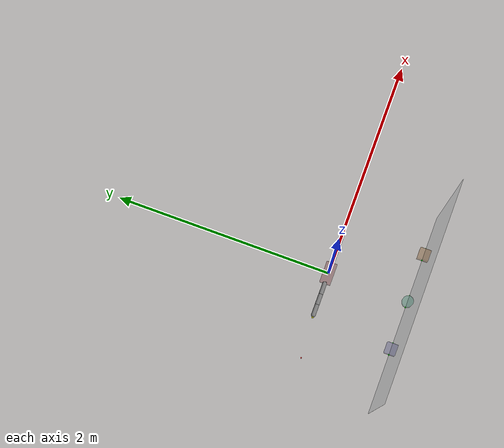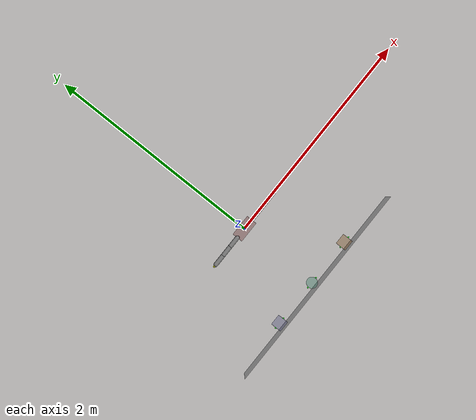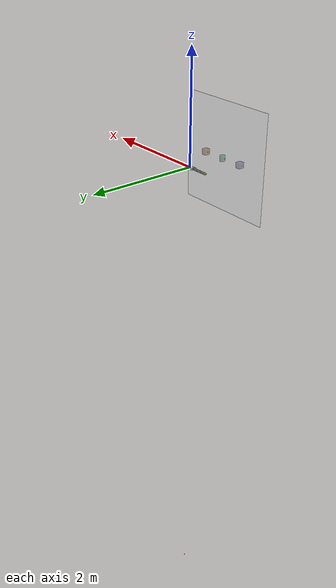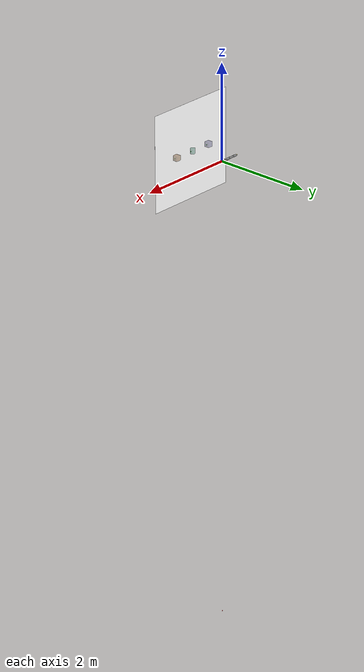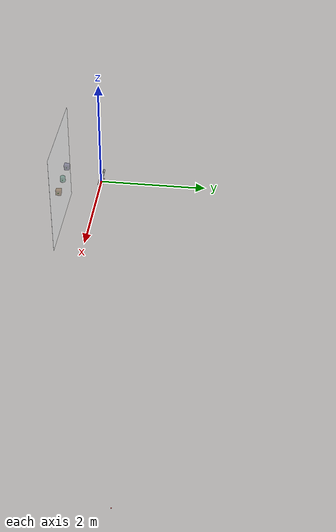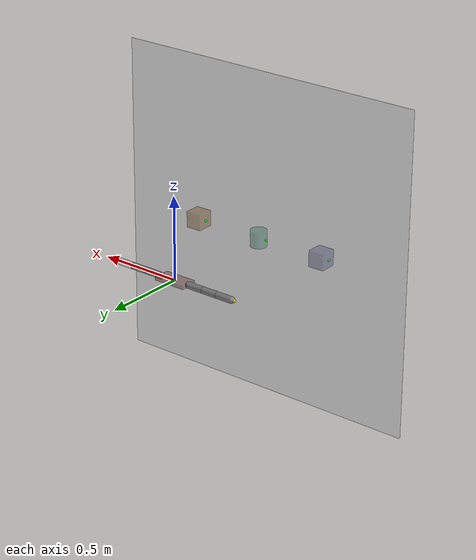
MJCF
<mujoco model="planar_two_finger_manipulator">
    <compiler angle="radian"/>
    <option timestep="0.001" gravity="0.0 -9.81 0.0"/>

    <visual>
        <rgba haze="0.15 0.25 0.35 1"/>
        <quality shadowsize="8192"/>
    </visual>

    <asset>
        <texture type="skybox" builtin="gradient" rgb1="0.3 0.5 0.7" rgb2="0.1 0.1 0.2" width="512" height="3072"/>
        <texture type="2d" name="groundplane" builtin="checker" mark="edge" rgb1="0.2 0.3 0.4" rgb2="0.1 0.2 0.3"
            markrgb="0.8 0.8 0.8" width="1000" height="1000"/>
        <material name="groundplane" texture="groundplane" texuniform="true" texrepeat="5 5" reflectance="0.0"/>
    </asset>

    <keyframe>
        <key name="grasp_init"
             qpos="0.0 0.0 -0.50 -0.50 -0.50 0.50 0.50 0.50  0 0 0  0 0 0  0 0 0"
             ctrl="0.0 0.0 -0.50 -0.50 -0.50 0.50 0.50 0.50"/>
    </keyframe>

    <worldbody>
        <!-- Scene Visualization -->
        <camera name="cam0" pos="0.0 0.0 4.0" xyaxes="1 0 0 0 1 0"/>

        <light pos="0 0 3" dir="0 0 -1" directional="true" ambient="0.3 0.3 0.3" diffuse="0.6 0.6 0.6" specular="0.1 0.1 0.1"/>
        <light pos="0 3 1"  dir="0 -1 -0.3" directional="true" ambient="0.0 0.0 0.0" diffuse="0.4 0.4 0.4" specular="0.0 0.0 0.0"/>

        <geom type="plane" material="groundplane" pos="0 -0.8 0" quat="0.7071068 -0.7071068 0 0" size="1 1 1" rgba="1 1 1 1" contype="1" conaffinity="1"/>

        <!-- Right Hand Index Finger -->
        <body name="base" pos="0 0 0">
            <geom type="box" size="0.1 0.05 0.01" rgba="0.5 0.3 0.3 0.5" mass="0.5"/>
            <joint name="Th_base_x" type="slide" axis="1 0 0" damping="1" range="-0.65 0.65" limited="true"/>
            <joint name="Th_base_y" type="slide" axis="0 1 0" damping="1" range="-1.2 0.2" limited="true"/>

            <body name="right_index_proximal_link" pos="0.1 0 0">
                <geom name="index_proximal" type="capsule" size="0.02" fromto="0 0 0 0.1 0 0" mass="0.1" group="1" conaffinity="0"/>
                <joint name="right_index_MCP_joint" type="hinge" axis="0 0 1" damping="0.01" range="-2.09 0.52" limited="true"/>

                <body name="right_index_medial_link" pos="0.1 0 0">
                    <joint name="right_index_PIP_joint" type="hinge" axis="0 0 1" damping="0.01" range="-2.09 0.0" limited="true"/>
                    <geom name="index_medial" type="capsule" size="0.02" fromto="0 0 0 0.1 0 0" mass="0.1" group="1" conaffinity="0"/>

                    <body name="right_index_distal_link" pos="0.1 0 0">
                        <joint name="right_index_DIP_joint" type="hinge" axis="0 0 1" damping="0.01" range="-1.57 0.0" limited="true"/>
                        <geom name="index_distal" type="capsule" size="0.02" fromto="0 0 0 0.1 0 0" mass="0.1" group="1" rgba="0.5 0.5 0.5 0.3"/>
                        <site name="index_touch" pos="0.12 -0.0 0" size="0.01" group="1" rgba="255 255 0 0.8"/>

                    </body>
                </body>
            </body>

            <!-- Right Hand Thumb Finger -->
            <body name="right_thumb_proximal_link" pos="-0.1 0 0">
                <geom name="thumb_proximal" type="capsule" size="0.02" fromto="0 0 0 -0.1 0 0" mass="0.1" group="1" conaffinity="0"/>
                <joint name="right_thumb_MCP_joint" type="hinge" axis="0 0 1" damping="0.01" range="-0.52 2.09" limited="true"/>

                <body name="right_thumb_medial_link" pos="-0.1 0 0">
                    <joint name="right_thumb_PIP_joint" type="hinge" axis="0 0 1" damping="0.01" range="0.0 2.09" limited="true"/>
                    <geom name="thumb_medial" type="capsule" size="0.02" fromto="0 0 0 -0.1 0 0" mass="0.1" group="1" conaffinity="0"/>

                    <body name="right_thumb_distal_link" pos="-0.1 0 0">
                        <joint name="right_thumb_DIP_joint" type="hinge" axis="0 0 1" damping="0.01" range="0.0 1.57" limited="true"/>
                        <geom name="thumb_distal" type="capsule" size="0.02" fromto="0 0 0 -0.1 0 0" mass="0.1" group="1"/>
                        <site name="thumb_touch" pos="-0.12 -0.0 0" size="0.01" group="1" rgba="255 255 0 0.8"/>

                    </body>
                </body>
            </body>
        </body>

        <!-- Contact point markers (initially hidden at origin) -->
        <site name="contact_p1" type="sphere" size="0.01"
            rgba="1 0 0 0.8" pos="0 0 -10"/>  <!-- Red sphere for thumb -->

        <site name="contact_p2" type="sphere" size="0.01"
            rgba="0 1 0 0.8" pos="0 0 -10"/>  <!-- Green sphere for index -->

        <body name="obj1" pos="-0.45 -0.75 0.0">
            <joint name="obj1_tx" type="slide" axis="1 0 0" damping="2"/>
            <joint name="obj1_ty" type="slide" axis="0 1 0" damping="2"/>
            <joint name="obj1_rz" type="hinge" axis="0 0 1" damping="2"/>
            <geom type="box" size="0.05 0.05 0.05" rgba="0.3 0.3 0.5 0.4" mass="0.1" friction="1 0.1 0.1"/>
            <site name="index_box_touch" pos="0.055 0.0 0.0" size="0.007" group="1" rgba="0 1 0 0.8"/>
            <site name="thumb_box_touch" pos="-0.055 0.0 0.0" size="0.007" group="1" rgba="0 1 0 0.8"/>
        </body>

        <body name="obj2" pos="0.45 -0.75 0.0">
            <joint name="obj2_tx" type="slide" axis="1 0 0" damping="2"/>
            <joint name="obj2_ty" type="slide" axis="0 1 0" damping="2"/>
            <joint name="obj2_rz" type="hinge" axis="0 0 1" damping="2"/>
            <geom type="box" size="0.05 0.05 0.05" rgba="0.5 0.3 0.1 0.4" mass="0.1" friction="1 0.1 0.1"/>
            <site name="index_box_touch_2" pos="0.055 0.0 0.0" size="0.007" group="1" rgba="0 1 0 0.8"/>
            <site name="thumb_box_touch_2" pos="-0.055 0.0 0.0" size="0.007" group="1" rgba="0 1 0 0.8"/>
        </body>

        <!-- Cylinder object (key 3) — visually distinct round shape centred in the scene -->
        <body name="obj3" pos="0.0 -0.75 0.0">
            <joint name="obj3_tx" type="slide" axis="1 0 0" damping="2"/>
            <joint name="obj3_ty" type="slide" axis="0 1 0" damping="2"/>
            <joint name="obj3_rz" type="hinge" axis="0 0 1" damping="2"/>
            <geom type="cylinder" size="0.05 0.05" rgba="0.2 0.5 0.4 0.4" mass="0.1" friction="1 0.1 0.1"/>
            <site name="index_cyl_touch" pos="0.055 0.0 0.0" size="0.007" group="1" rgba="0 1 0 0.8"/>
            <site name="thumb_cyl_touch" pos="-0.055 0.0 0.0" size="0.007" group="1" rgba="0 1 0 0.8"/>
        </body>

    </worldbody>

    <!-- Position control -->

    <!-- Torque Control -->
    <actuator>
        <motor name="Th_base_x_act" joint="Th_base_x" ctrllimited="true" ctrlrange="-20 20"/>
        <motor name="Th_base_y_act" joint="Th_base_y" ctrllimited="true" ctrlrange="-20 20"/>

        <motor name="right_index_MCP_joint" joint="right_index_MCP_joint" ctrllimited="true" ctrlrange="-1 1"/>
        <motor name="right_index_PIP_joint" joint="right_index_PIP_joint" ctrllimited="true" ctrlrange="-1 1"/>
        <motor name="right_index_DIP_joint" joint="right_index_DIP_joint" ctrllimited="true" ctrlrange="-1 1"/>

        <motor name="right_thumb_MCP_joint" joint="right_thumb_MCP_joint" ctrllimited="true" ctrlrange="-1 1"/>
        <motor name="right_thumb_PIP_joint" joint="right_thumb_PIP_joint" ctrllimited="true" ctrlrange="-1 1"/>
        <motor name="right_thumb_DIP_joint" joint="right_thumb_DIP_joint" ctrllimited="true" ctrlrange="-1 1"/>
    </actuator>

    <sensor>
        <contact name="thumb_contact" body1="right_thumb_distal_link" body2="obj1" num="1" data="found force pos normal tangent" reduce="maxforce"/>
        <contact name="index_contact" body1="right_index_distal_link" body2="obj1" num="1" data="found force pos normal tangent" reduce="maxforce"/>
    </sensor>

</mujoco>
